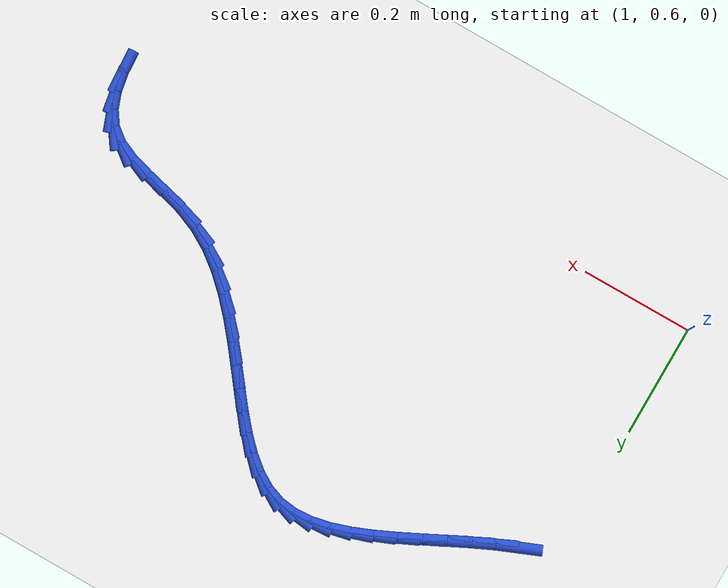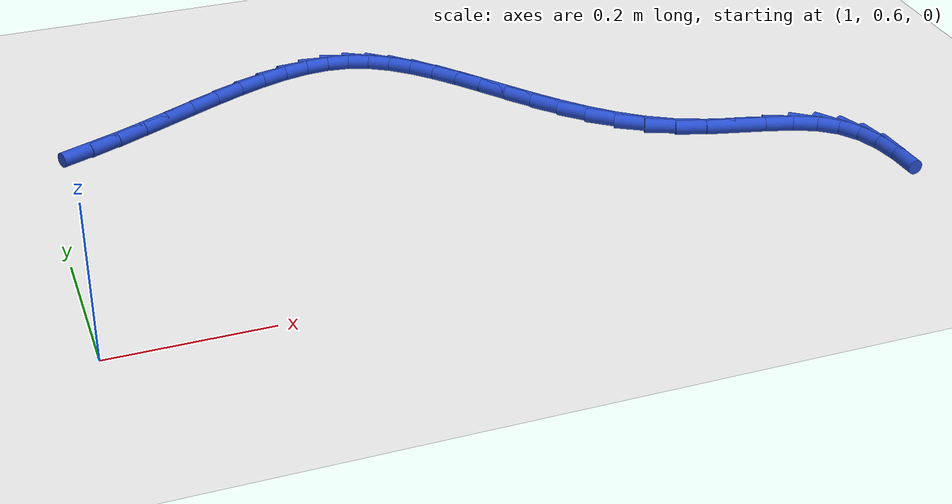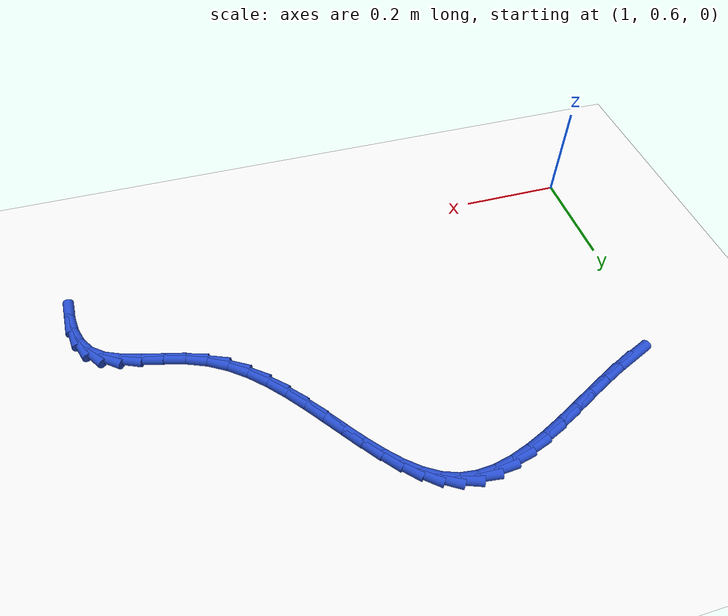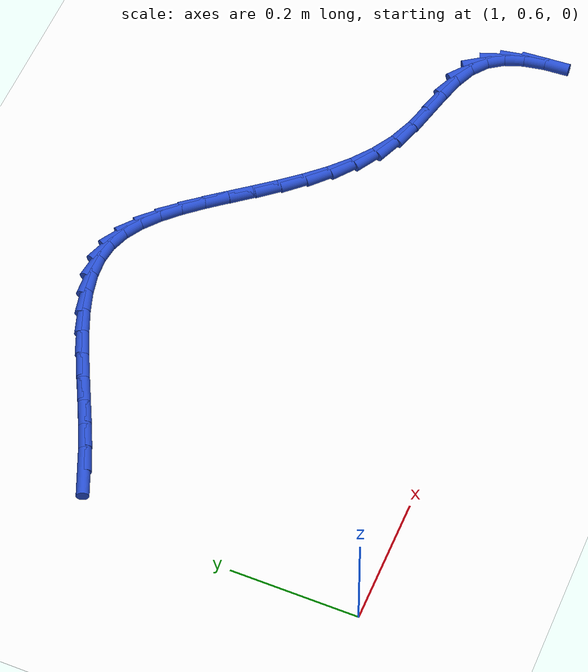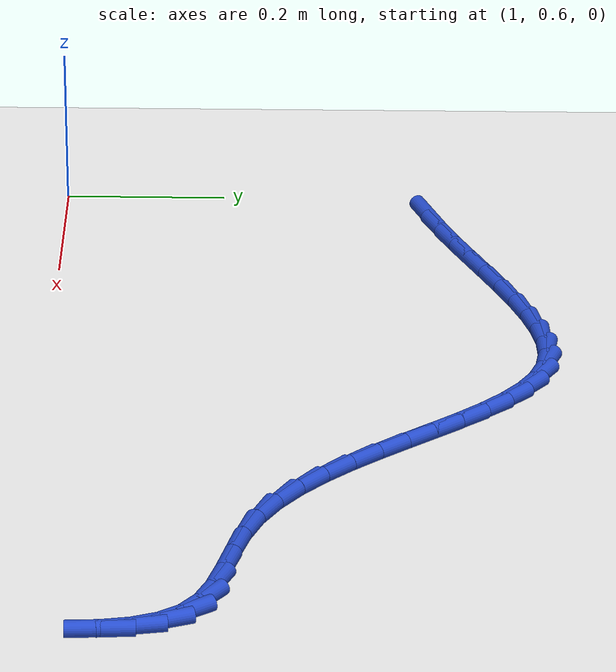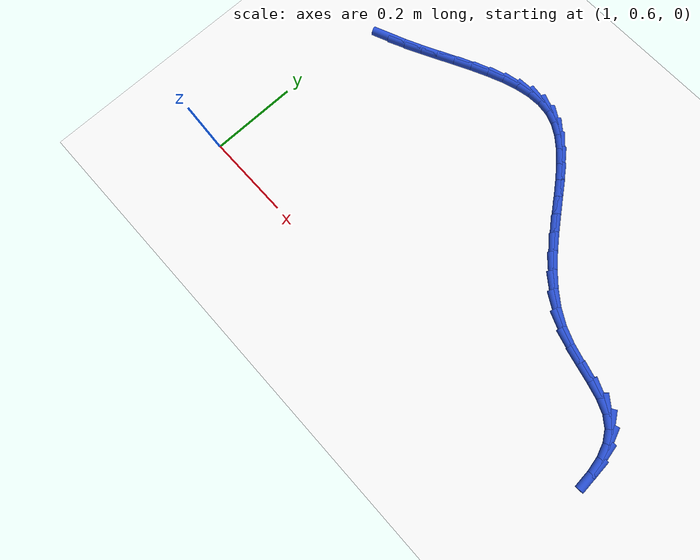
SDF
<sdf version="1.6">
 <world name="default">
  <model name="ground_plane">
   <static>1</static>
   <link name="link">
    <collision name="collision">
     <geometry><plane><normal>0 0 1</normal><size>100 100</size></plane></geometry>
     <surface><friction><ode><mu>100</mu><mu2>50</mu2></ode></friction></surface>
    </collision>
    <visual name="visual">
     <cast_shadows>0</cast_shadows>
     <geometry><plane><normal>0 0 1</normal><size>100 100</size></plane></geometry>
     <material>
      <script><uri>file://media/materials/scripts/gazebo.material</uri><name>Gazebo/WhiteGlow</name></script>
     </material>
    </visual>
   </link>
  </model>
  <model name="line">
   <link name="link_48">
    <pose>1.0640716038957485 1.0628105869276183 0.01 0 1.57 0.39207253317812685</pose>
    <collision name="collision">
     <geometry><cylinder><radius>0.01</radius><length>0.08</length></cylinder></geometry>
    </collision>
    <visual name="visual">
     <material>
      <script><name>Gazebo/Blue</name><uri>file://media/materials/scripts/gazebo.material</uri></script>
     </material>
     <geometry><cylinder><radius>0.01</radius><length>0.08</length></cylinder></geometry>
    </visual>
   </link>
   <link name="link_49">
    <pose>1.1017793888955296 1.0784019907636098 0.01 0 1.57 0.4350872213222646</pose>
    <collision name="collision">
     <geometry><cylinder><radius>0.01</radius><length>0.08</length></cylinder></geometry>
    </collision>
    <visual name="visual">
     <material>
      <script><name>Gazebo/Blue</name><uri>file://media/materials/scripts/gazebo.material</uri></script>
     </material>
     <geometry><cylinder><radius>0.01</radius><length>0.08</length></cylinder></geometry>
    </visual>
   </link>
   <link name="link_50">
    <pose>1.1396649410901403 1.0960109192004315 0.01 0 1.57 0.4598115246713203</pose>
    <collision name="collision">
     <geometry><cylinder><radius>0.01</radius><length>0.08</length></cylinder></geometry>
    </collision>
    <visual name="visual">
     <material>
      <script><name>Gazebo/Blue</name><uri>file://media/materials/scripts/gazebo.material</uri></script>
     </material>
     <geometry><cylinder><radius>0.01</radius><length>0.08</length></cylinder></geometry>
    </visual>
   </link>
   <link name="link_51">
    <pose>1.1775236380082104 1.1147590778578984 0.01 0 1.57 0.46779521064507407</pose>
    <collision name="collision">
     <geometry><cylinder><radius>0.01</radius><length>0.08</length></cylinder></geometry>
    </collision>
    <visual name="visual">
     <material>
      <script><name>Gazebo/Blue</name><uri>file://media/materials/scripts/gazebo.material</uri></script>
     </material>
     <geometry><cylinder><radius>0.01</radius><length>0.08</length></cylinder></geometry>
    </visual>
   </link>
   <link name="link_52">
    <pose>1.2151508571783698 1.1337681723558262 0.01 0 1.57 0.4592536567526458</pose>
    <collision name="collision">
     <geometry><cylinder><radius>0.01</radius><length>0.08</length></cylinder></geometry>
    </collision>
    <visual name="visual">
     <material>
      <script><name>Gazebo/Blue</name><uri>file://media/materials/scripts/gazebo.material</uri></script>
     </material>
     <geometry><cylinder><radius>0.01</radius><length>0.08</length></cylinder></geometry>
    </visual>
   </link>
   <link name="link_53">
    <pose>1.252341976129249 1.15215990831403 0.01 0 1.57 0.4330091335270411</pose>
    <collision name="collision">
     <geometry><cylinder><radius>0.01</radius><length>0.08</length></cylinder></geometry>
    </collision>
    <visual name="visual">
     <material>
      <script><name>Gazebo/Blue</name><uri>file://media/materials/scripts/gazebo.material</uri></script>
     </material>
     <geometry><cylinder><radius>0.01</radius><length>0.08</length></cylinder></geometry>
    </visual>
   </link>
   <link name="link_54">
    <pose>1.2888923723894778 1.169055991352325 0.01 0 1.57 0.3862902853971466</pose>
    <collision name="collision">
     <geometry><cylinder><radius>0.01</radius><length>0.08</length></cylinder></geometry>
    </collision>
    <visual name="visual">
     <material>
      <script><name>Gazebo/Blue</name><uri>file://media/materials/scripts/gazebo.material</uri></script>
     </material>
     <geometry><cylinder><radius>0.01</radius><length>0.08</length></cylinder></geometry>
    </visual>
   </link>
   <link name="link_55">
    <pose>1.3245974234876863 1.1835781270905268 0.01 0 1.57 0.31441437125018074</pose>
    <collision name="collision">
     <geometry><cylinder><radius>0.01</radius><length>0.08</length></cylinder></geometry>
    </collision>
    <visual name="visual">
     <material>
      <script><name>Gazebo/Blue</name><uri>file://media/materials/scripts/gazebo.material</uri></script>
     </material>
     <geometry><cylinder><radius>0.01</radius><length>0.08</length></cylinder></geometry>
    </visual>
   </link>
   <link name="link_56">
    <pose>1.359252506952505 1.1948480211484505 0.01 0 1.57 0.2105811546970328</pose>
    <collision name="collision">
     <geometry><cylinder><radius>0.01</radius><length>0.08</length></cylinder></geometry>
    </collision>
    <visual name="visual">
     <material>
      <script><name>Gazebo/Blue</name><uri>file://media/materials/scripts/gazebo.material</uri></script>
     </material>
     <geometry><cylinder><radius>0.01</radius><length>0.08</length></cylinder></geometry>
    </visual>
   </link>
   <link name="link_57">
    <pose>1.3926530003125634 1.2019873791459112 0.01 0 1.57 0.06660272497537507</pose>
    <collision name="collision">
     <geometry><cylinder><radius>0.01</radius><length>0.08</length></cylinder></geometry>
    </collision>
    <visual name="visual">
     <material>
      <script><name>Gazebo/Blue</name><uri>file://media/materials/scripts/gazebo.material</uri></script>
     </material>
     <geometry><cylinder><radius>0.01</radius><length>0.08</length></cylinder></geometry>
    </visual>
   </link>
   <link name="link_58">
    <pose>1.424594281096492 1.2041179067027252 0.01 0 1.57 -0.12344162327158452</pose>
    <collision name="collision">
     <geometry><cylinder><radius>0.01</radius><length>0.08</length></cylinder></geometry>
    </collision>
    <visual name="visual">
     <material>
      <script><name>Gazebo/Blue</name><uri>file://media/materials/scripts/gazebo.material</uri></script>
     </material>
     <geometry><cylinder><radius>0.01</radius><length>0.08</length></cylinder></geometry>
    </visual>
   </link>
   <link name="link_59">
    <pose>1.454871726832921 1.2003613094387067 0.01 0 1.57 -0.34734658807763835</pose>
    <collision name="collision">
     <geometry><cylinder><radius>0.01</radius><length>0.08</length></cylinder></geometry>
    </collision>
    <visual name="visual">
     <material>
      <script><name>Gazebo/Blue</name><uri>file://media/materials/scripts/gazebo.material</uri></script>
     </material>
     <geometry><cylinder><radius>0.01</radius><length>0.08</length></cylinder></geometry>
    </visual>
   </link>
   <link name="link_60">
    <pose>1.4833486312748978 1.1900519743539284 0.01 0 1.57 -0.5453853863044464</pose>
    <collision name="collision">
     <geometry><cylinder><radius>0.01</radius><length>0.08</length></cylinder></geometry>
    </collision>
    <visual name="visual">
     <material>
      <script><name>Gazebo/Blue</name><uri>file://media/materials/scripts/gazebo.material</uri></script>
     </material>
     <geometry><cylinder><radius>0.01</radius><length>0.08</length></cylinder></geometry>
    </visual>
   </link>
   <link name="link_61">
    <pose>1.5102692411695982 1.1737172524169184 0.01 0 1.57 -0.6939582385366846</pose>
    <collision name="collision">
     <geometry><cylinder><radius>0.01</radius><length>0.08</length></cylinder></geometry>
    </collision>
    <visual name="visual">
     <material>
      <script><name>Gazebo/Blue</name><uri>file://media/materials/scripts/gazebo.material</uri></script>
     </material>
     <geometry><cylinder><radius>0.01</radius><length>0.08</length></cylinder></geometry>
    </visual>
   </link>
   <link name="link_62">
    <pose>1.5360105420108032 1.1523001693496844 0.01 0 1.57 -0.7976141848659642</pose>
    <collision name="collision">
     <geometry><cylinder><radius>0.01</radius><length>0.08</length></cylinder></geometry>
    </collision>
    <visual name="visual">
     <material>
      <script><name>Gazebo/Blue</name><uri>file://media/materials/scripts/gazebo.material</uri></script>
     </material>
     <geometry><cylinder><radius>0.01</radius><length>0.08</length></cylinder></geometry>
    </visual>
   </link>
   <link name="link_63">
    <pose>1.5609496551273796 1.1267441762452421 0.01 0 1.57 -0.8647835115125102</pose>
    <collision name="collision">
     <geometry><cylinder><radius>0.01</radius><length>0.08</length></cylinder></geometry>
    </collision>
    <visual name="visual">
     <material>
      <script><name>Gazebo/Blue</name><uri>file://media/materials/scripts/gazebo.material</uri></script>
     </material>
     <geometry><cylinder><radius>0.01</radius><length>0.08</length></cylinder></geometry>
    </visual>
   </link>
   <link name="link_64">
    <pose>1.5854637018481923 1.0979927241966074 0.01 0 1.57 -0.9027118821616733</pose>
    <collision name="collision">
     <geometry><cylinder><radius>0.01</radius><length>0.08</length></cylinder></geometry>
    </collision>
    <visual name="visual">
     <material>
      <script><name>Gazebo/Blue</name><uri>file://media/materials/scripts/gazebo.material</uri></script>
     </material>
     <geometry><cylinder><radius>0.01</radius><length>0.08</length></cylinder></geometry>
    </visual>
   </link>
   <link name="link_65">
    <pose>1.6099298035021052 1.066989264296795 0.01 0 1.57 -0.91627067479278</pose>
    <collision name="collision">
     <geometry><cylinder><radius>0.01</radius><length>0.08</length></cylinder></geometry>
    </collision>
    <visual name="visual">
     <material>
      <script><name>Gazebo/Blue</name><uri>file://media/materials/scripts/gazebo.material</uri></script>
     </material>
     <geometry><cylinder><radius>0.01</radius><length>0.08</length></cylinder></geometry>
    </visual>
   </link>
   <link name="link_66">
    <pose>1.6347250814179852 1.034677247638822 0.01 0 1.57 -0.9081147444834777</pose>
    <collision name="collision">
     <geometry><cylinder><radius>0.01</radius><length>0.08</length></cylinder></geometry>
    </collision>
    <visual name="visual">
     <material>
      <script><name>Gazebo/Blue</name><uri>file://media/materials/scripts/gazebo.material</uri></script>
     </material>
     <geometry><cylinder><radius>0.01</radius><length>0.08</length></cylinder></geometry>
    </visual>
   </link>
   <link name="link_67">
    <pose>1.6602266569246968 1.0020001253157034 0.01 0 1.57 -0.8790806669485864</pose>
    <collision name="collision">
     <geometry><cylinder><radius>0.01</radius><length>0.08</length></cylinder></geometry>
    </collision>
    <visual name="visual">
     <material>
      <script><name>Gazebo/Blue</name><uri>file://media/materials/scripts/gazebo.material</uri></script>
     </material>
     <geometry><cylinder><radius>0.01</radius><length>0.08</length></cylinder></geometry>
    </visual>
   </link>
   <link name="link_68">
    <pose>1.6868116513511044 0.9699013484204547 0.01 0 1.57 -0.8285534936551749</pose>
    <collision name="collision">
     <geometry><cylinder><radius>0.01</radius><length>0.08</length></cylinder></geometry>
    </collision>
    <visual name="visual">
     <material>
      <script><name>Gazebo/Blue</name><uri>file://media/materials/scripts/gazebo.material</uri></script>
     </material>
     <geometry><cylinder><radius>0.01</radius><length>0.08</length></cylinder></geometry>
    </visual>
   </link>
   <link name="link_69">
    <pose>1.7148571860260748 0.9393243680460923 0.01 0 1.57 -0.7548625130969833</pose>
    <collision name="collision">
     <geometry><cylinder><radius>0.01</radius><length>0.08</length></cylinder></geometry>
    </collision>
    <visual name="visual">
     <material>
      <script><name>Gazebo/Blue</name><uri>file://media/materials/scripts/gazebo.material</uri></script>
     </material>
     <geometry><cylinder><radius>0.01</radius><length>0.08</length></cylinder></geometry>
    </visual>
   </link>
   <link name="link_70">
    <pose>1.7447403822784715 0.9112126352856311 0.01 0 1.57 -0.6559359545992909</pose>
    <collision name="collision">
     <geometry><cylinder><radius>0.01</radius><length>0.08</length></cylinder></geometry>
    </collision>
    <visual name="visual">
     <material>
      <script><name>Gazebo/Blue</name><uri>file://media/materials/scripts/gazebo.material</uri></script>
     </material>
     <geometry><cylinder><radius>0.01</radius><length>0.08</length></cylinder></geometry>
    </visual>
   </link>
   <link name="link_71">
    <pose>1.7768383614371606 0.886509601232088 0.01 0 1.57 -0.5305468637745185</pose>
    <collision name="collision">
     <geometry><cylinder><radius>0.01</radius><length>0.08</length></cylinder></geometry>
    </collision>
    <visual name="visual">
     <material>
      <script><name>Gazebo/Blue</name><uri>file://media/materials/scripts/gazebo.material</uri></script>
     </material>
     <geometry><cylinder><radius>0.01</radius><length>0.08</length></cylinder></geometry>
    </visual>
   </link>
   <link name="link_72">
    <pose>1.8115282448310073 0.8661587169784773 0.01 0 1.57 -0.38466888849271724</pose>
    <collision name="collision">
     <geometry><cylinder><radius>0.01</radius><length>0.08</length></cylinder></geometry>
    </collision>
    <visual name="visual">
     <material>
      <script><name>Gazebo/Blue</name><uri>file://media/materials/scripts/gazebo.material</uri></script>
     </material>
     <geometry><cylinder><radius>0.01</radius><length>0.08</length></cylinder></geometry>
    </visual>
   </link>
   <link name="link_73">
    <pose>1.849076015864356 0.8509580052378094 0.01 0 1.57 -0.2765500615653187</pose>
    <collision name="collision">
     <geometry><cylinder><radius>0.01</radius><length>0.08</length></cylinder></geometry>
    </collision>
    <visual name="visual">
     <material>
      <script><name>Gazebo/Blue</name><uri>file://media/materials/scripts/gazebo.material</uri></script>
     </material>
     <geometry><cylinder><radius>0.01</radius><length>0.08</length></cylinder></geometry>
    </visual>
   </link>
   <link name="link_74">
    <pose>1.8883089006229552 0.8398228177359568 0.01 0 1.57 -0.2396583632288908</pose>
    <collision name="collision">
     <geometry><cylinder><radius>0.01</radius><length>0.08</length></cylinder></geometry>
    </collision>
    <visual name="visual">
     <material>
      <script><name>Gazebo/Blue</name><uri>file://media/materials/scripts/gazebo.material</uri></script>
     </material>
     <geometry><cylinder><radius>0.01</radius><length>0.08</length></cylinder></geometry>
    </visual>
   </link>
   <link name="link_75">
    <pose>1.9270510830667111 0.8303559858141581 0.01 0 1.57 -0.27626953356677364</pose>
    <collision name="collision">
     <geometry><cylinder><radius>0.01</radius><length>0.08</length></cylinder></geometry>
    </collision>
    <visual name="visual">
     <material>
      <script><name>Gazebo/Blue</name><uri>file://media/materials/scripts/gazebo.material</uri></script>
     </material>
     <geometry><cylinder><radius>0.01</radius><length>0.08</length></cylinder></geometry>
    </visual>
   </link>
   <link name="link_76">
    <pose>1.9631063228768344 0.8201336148353118 0.01 0 1.57 -0.4060390415130834</pose>
    <collision name="collision">
     <geometry><cylinder><radius>0.01</radius><length>0.08</length></cylinder></geometry>
    </collision>
    <visual name="visual">
     <material>
      <script><name>Gazebo/Blue</name><uri>file://media/materials/scripts/gazebo.material</uri></script>
     </material>
     <geometry><cylinder><radius>0.01</radius><length>0.08</length></cylinder></geometry>
    </visual>
   </link>
   <link name="link_77">
    <pose>1.994278379734534 0.8067318101623152 0.01 0 1.57 -0.6620388044654516</pose>
    <collision name="collision">
     <geometry><cylinder><radius>0.01</radius><length>0.08</length></cylinder></geometry>
    </collision>
    <visual name="visual">
     <material>
      <script><name>Gazebo/Blue</name><uri>file://media/materials/scripts/gazebo.material</uri></script>
     </material>
     <geometry><cylinder><radius>0.01</radius><length>0.08</length></cylinder></geometry>
    </visual>
   </link>
   <link name="link_78">
    <pose>2.01850099338247 0.7878532634071203 0.01 0 1.57 -0.9705587579521174</pose>
    <collision name="collision">
     <geometry><cylinder><radius>0.01</radius><length>0.08</length></cylinder></geometry>
    </collision>
    <visual name="visual">
     <material>
      <script><name>Gazebo/Blue</name><uri>file://media/materials/scripts/gazebo.material</uri></script>
     </material>
     <geometry><cylinder><radius>0.01</radius><length>0.08</length></cylinder></geometry>
    </visual>
   </link>
   <link name="link_79">
    <pose>2.03552980736112 0.7629749996089042 0.01 0 1.57 -1.2223307954062372</pose>
    <collision name="collision">
     <geometry><cylinder><radius>0.01</radius><length>0.08</length></cylinder></geometry>
    </collision>
    <visual name="visual">
     <material>
      <script><name>Gazebo/Blue</name><uri>file://media/materials/scripts/gazebo.material</uri></script>
     </material>
     <geometry><cylinder><radius>0.01</radius><length>0.08</length></cylinder></geometry>
    </visual>
   </link>
   <link name="link_80">
    <pose>2.0464626173939413 0.7328811520556671 0.01 0 1.57 -1.399542675696124</pose>
    <collision name="collision">
     <geometry><cylinder><radius>0.01</radius><length>0.08</length></cylinder></geometry>
    </collision>
    <visual name="visual">
     <material>
      <script><name>Gazebo/Blue</name><uri>file://media/materials/scripts/gazebo.material</uri></script>
     </material>
     <geometry><cylinder><radius>0.01</radius><length>0.08</length></cylinder></geometry>
    </visual>
   </link>
   <link name="link_81">
    <pose>2.0524284309436105 0.6983862508281936 0.01 0 1.57 -1.514978713375138</pose>
    <collision name="collision">
     <geometry><cylinder><radius>0.01</radius><length>0.08</length></cylinder></geometry>
    </collision>
    <visual name="visual">
     <material>
      <script><name>Gazebo/Blue</name><uri>file://media/materials/scripts/gazebo.material</uri></script>
     </material>
     <geometry><cylinder><radius>0.01</radius><length>0.08</length></cylinder></geometry>
    </visual>
   </link>
  </model>
 </world>
</sdf>
